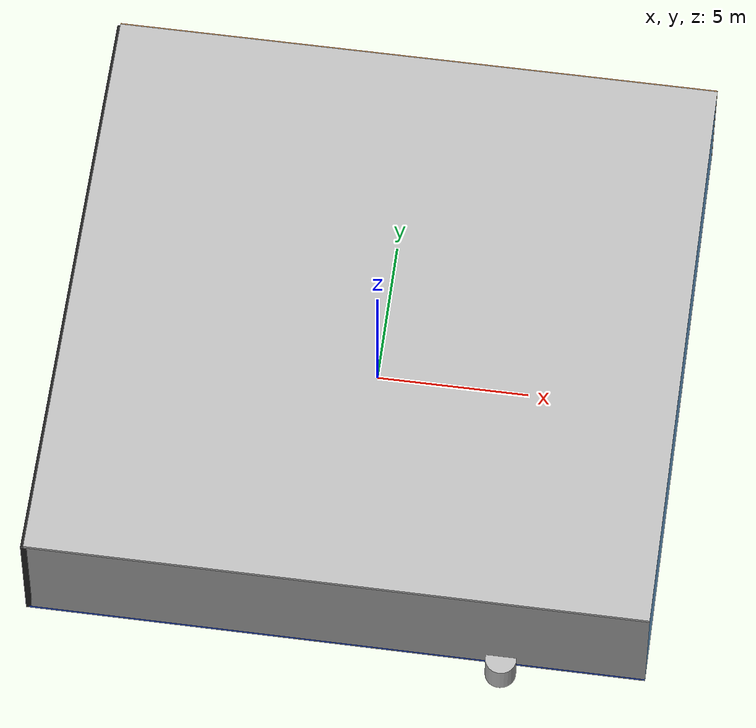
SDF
<sdf version="1.4">
 <world name="default">
  <physics type="ode">
   <max_step_size>0.001</max_step_size>
   <real_time_factor>1</real_time_factor>
   <real_time_update_rate>1000</real_time_update_rate>
   <gravity>0 0 -9.8</gravity>
  </physics>
  <scene><ambient>0.4 0.4 0.4 1</ambient><background>0.7 0.7 0.7 1</background><shadows>1</shadows></scene>
  <model name="Surrounding">
   <static>1</static>
   <link name="Ceiling">
    <collision name="Ceiling_Collision"><geometry><box><size>20 20 0.1</size></box></geometry></collision>
    <visual name="Ceiling_Visual">
     <geometry><box><size>20 20 0.1</size></box></geometry>
     <material>
      <script><uri>file://media/materials/scripts/gazebo.material</uri><name>Gazebo/JointAnchor</name></script>
     </material>
    </visual>
    <pose>0 0 4.05 0 0 0</pose>
   </link>
   <link name="Wall_South">
    <collision name="Wall_South_Collision">
     <geometry><box><size>20 0 4</size></box></geometry>
     <pose>0 0 2 0 -0 0</pose>
    </collision>
    <visual name="Wall_South_Visual">
     <pose>0 0 2 0 -0 0</pose>
     <geometry><box><size>20 0 4</size></box></geometry>
     <material>
      <script><uri>file://media/materials/scripts/gazebo.material</uri><name>Gazebo/GreyGradientSky</name></script>
     </material>
    </visual>
    <velocity_decay><linear>0</linear><angular>0</angular></velocity_decay>
    <pose>0 -10 0 0 -0 0</pose>
   </link>
   <link name="Wall_East">
    <collision name="Wall_21_Collision">
     <geometry><box><size>20 0 4</size></box></geometry>
     <pose>0 0 2 0 -0 0</pose>
    </collision>
    <visual name="Wall_21_Visual">
     <pose>0 0 2 0 -0 0</pose>
     <geometry><box><size>20 0 4</size></box></geometry>
     <material>
      <script><uri>file://media/materials/scripts/gazebo.material</uri><name>Gazebo/SkyBlue</name></script>
     </material>
    </visual>
    <velocity_decay><linear>0</linear><angular>0</angular></velocity_decay>
    <pose>10 0 0 0 -0 1.5708</pose>
   </link>
   <link name="Wall_North">
    <collision name="Wall_22_Collision">
     <geometry><box><size>20 0.2 4</size></box></geometry>
     <pose>0 0 2 0 -0 0</pose>
    </collision>
    <visual name="Wall_22_Visual">
     <pose>0 0 2 0 -0 0</pose>
     <geometry><box><size>20 0.2 4</size></box></geometry>
     <material>
      <script><uri>file://media/materials/scripts/gazebo.material</uri><name>Gazebo/WoodPallet</name></script>
     </material>
    </visual>
    <velocity_decay><linear>0</linear><angular>0</angular></velocity_decay>
    <pose>0 10 0 0 -0 0</pose>
   </link>
   <link name="Wall_West">
    <collision name="Wall_23_Collision">
     <geometry><box><size>20 0.2 4</size></box></geometry>
     <pose>0 0 2 0 -0 0</pose>
    </collision>
    <visual name="Wall_23_Visual">
     <pose>0 0 2 0 -0 0</pose>
     <geometry><box><size>20 0.2 4</size></box></geometry>
     <material>
      <script><uri>file://media/materials/scripts/gazebo.material</uri><name>Gazebo/Black</name></script>
     </material>
    </visual>
    <velocity_decay><linear>0</linear><angular>0</angular></velocity_decay>
    <pose>-10 0 0 0 0 -1.5708</pose>
   </link>
   <link name="Ground_link">
    <collision name="collision">
     <pose>0 0 .05 0 -0 0</pose>
     <geometry><box><size>20 20 0.1</size></box></geometry>
    </collision>
    <visual name="visual">
     <pose>0 0 .05 0 -0 0</pose>
     <geometry><box><size>20 20 0.1</size></box></geometry>
     <material>
      <script><uri>file://media/materials/scripts/gazebo.material</uri><name>Gazebo/BlueGlow</name></script>
     </material>
    </visual>
   </link>
   <static>1</static>
  </model>
  <spherical_coordinates>
   <surface_model>EARTH_WGS84</surface_model>
   <latitude_deg>0</latitude_deg>
   <longitude_deg>0</longitude_deg>
   <elevation>0</elevation>
   <heading_deg>0</heading_deg>
  </spherical_coordinates>
  <light name="lightball_0" type="diffuse">
   <diffuse>0.8 0.8 0.8 1</diffuse>
   <specular>0.2 0.2 0.2 1</specular>
   <attenuation>
    <range>100</range>
    <constant>0.7</constant>
    <linear>0.01</linear>
    <quadratic>0.001</quadratic>
   </attenuation>
   <direction>-0.5 0.1 -0.9</direction>
   <pose>9.43490736052 7.73347497562 1.76192126547 0 0 0</pose>
  </light>
  <light name="lightball_1" type="diffuse">
   <diffuse>0.8 0.8 0.8 1</diffuse>
   <specular>0.2 0.2 0.2 1</specular>
   <attenuation>
    <range>100</range>
    <constant>0.7</constant>
    <linear>0.01</linear>
    <quadratic>0.001</quadratic>
   </attenuation>
   <direction>-0.5 0.1 -0.9</direction>
   <pose>-3.26660884613 5.40580973968 2.5968642909 0 0 0</pose>
  </light>
  <light name="lightball_2" type="diffuse">
   <diffuse>0.8 0.8 0.8 1</diffuse>
   <specular>0.2 0.2 0.2 1</specular>
   <attenuation>
    <range>100</range>
    <constant>0.7</constant>
    <linear>0.01</linear>
    <quadratic>0.001</quadratic>
   </attenuation>
   <direction>-0.5 0.1 -0.9</direction>
   <pose>2.80051458642 9.61214985146 3.28955542797 0 0 0</pose>
  </light>
  <light name="lightball_3" type="diffuse">
   <diffuse>0.8 0.8 0.8 1</diffuse>
   <specular>0.2 0.2 0.2 1</specular>
   <attenuation>
    <range>100</range>
    <constant>0.7</constant>
    <linear>0.01</linear>
    <quadratic>0.001</quadratic>
   </attenuation>
   <direction>-0.5 0.1 -0.9</direction>
   <pose>1.51953147406 3.64399466307 2.66907766272 0 0 0</pose>
  </light>
  <include>
   <uri>model://robocup_3Dsim_goal</uri>
   <pose>0.364294124333 -6.51550654508 0 0 0 2.25742606649</pose>
  </include>
  <include>
   <uri>model://textured_shapes</uri>
   <pose>5.6082120394 -8.63374187643 0 0 0 2.96769093672</pose>
  </include>
  <include>
   <uri>model://textured_shapes</uri>
   <pose>4.48180129136 7.77069563385 0 0 0 0.735188096783</pose>
  </include>
 </world>
</sdf>

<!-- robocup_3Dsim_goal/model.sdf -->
<sdf version="1.5">
  <model name="robocup_3d_goal">
    <static>true</static>
    <link name="left_post">
      <pose>0 1.05 0.45 0 0 0</pose>
      <collision name="collision">
        <geometry>
          <cylinder>
            <radius>0.05</radius>
            <length>0.9</length>
          </cylinder>
        </geometry>
      </collision>
      <visual name="visual">
        <geometry>
          <cylinder>
            <radius>0.05</radius>
            <length>0.9</length>
          </cylinder>
        </geometry>
        <material>
          <script>
            <uri>file://media/materials/scripts/gazebo.material</uri>
            <name>Gazebo/ZincYellow</name>
          </script>
        </material>
      </visual>
    </link>
    <link name="left_support_horiz_lower">
      <pose>0.30 1.05 0.01 0 0 0</pose>
      <collision name="collision">
        <geometry>
          <box>
            <size>0.50 0.02 0.02</size>
          </box>
        </geometry>
      </collision>
      <visual name="visual">
        <geometry>
          <box>
            <size>0.50 0.02 0.02</size>
          </box>
        </geometry>
        <material>
          <script>
            <uri>file://media/materials/scripts/gazebo.material</uri>
            <name>Gazebo/White</name>
          </script>
        </material>
      </visual>
    </link>
    <link name="left_support_horiz_upper">
      <pose>0.30 1.05 0.79 0 0 0</pose>
      <collision name="collision">
        <geometry>
          <box>
            <size>0.50 0.02 0.02</size>
          </box>
        </geometry>
      </collision>
      <visual name="visual">
        <geometry>
          <box>
            <size>0.50 0.02 0.02</size>
          </box>
        </geometry>
        <material>
          <script>
            <uri>file://media/materials/scripts/gazebo.material</uri>
            <name>Gazebo/White</name>
          </script>
        </material>
      </visual>
    </link>
    <link name="left_support_vertical">
      <pose>0.56 1.05 0.4 0 1.5708 0</pose>
      <collision name="collision">
        <geometry>
          <box>
            <size>0.80 0.02 0.02</size>
          </box>
        </geometry>
      </collision>
      <visual name="visual">
        <geometry>
          <box>
            <size>0.80 0.02 0.02</size>
          </box>
        </geometry>
        <material>
          <script>
            <uri>file://media/materials/scripts/gazebo.material</uri>
            <name>Gazebo/White</name>
          </script>
        </material>
      </visual>
    </link>
    <link name="right_support_horiz_lower">
      <pose>0.30 -1.05 0.01 0 0 0</pose>
      <collision name="collision">
        <geometry>
          <box>
            <size>0.50 0.02 0.02</size>
          </box>
        </geometry>
      </collision>
      <visual name="visual">
        <geometry>
          <box>
            <size>0.50 0.02 0.02</size>
          </box>
        </geometry>
        <material>
          <script>
            <uri>file://media/materials/scripts/gazebo.material</uri>
            <name>Gazebo/White</name>
          </script>
        </material>
      </visual>
    </link>
    <link name="right_support_horiz_upper">
      <pose>0.30 -1.05 0.79 0 0 0</pose>
      <collision name="collision">
        <geometry>
          <box>
            <size>0.50 0.02 0.02</size>
          </box>
        </geometry>
      </collision>
      <visual name="visual">
        <geometry>
          <box>
            <size>0.50 0.02 0.02</size>
          </box>
        </geometry>
        <material>
          <script>
            <uri>file://media/materials/scripts/gazebo.material</uri>
            <name>Gazebo/White</name>
          </script>
        </material>
      </visual>
    </link>
    <link name="right_support_vertical">
      <pose>0.56 -1.05 0.4 0 1.5708 0</pose>
      <collision name="collision">
        <geometry>
          <box>
            <size>0.80 0.02 0.02</size>
          </box>
        </geometry>
      </collision>
      <visual name="visual">
        <geometry>
          <box>
            <size>0.80 0.02 0.02</size>
          </box>
        </geometry>
        <material>
          <script>
            <uri>file://media/materials/scripts/gazebo.material</uri>
            <name>Gazebo/White</name>
          </script>
        </material>
      </visual>
    </link>
    <link name="center_support_horiz_lower">
      <pose>0.56 0 0.01 0 1.5708 0</pose>
      <collision name="collision">
        <geometry>
          <box>
            <size>0.02 2.08 0.02</size>
          </box>
        </geometry>
      </collision>
      <visual name="visual">
        <geometry>
          <box>
            <size>0.02 2.08 0.02</size>
          </box>
        </geometry>
        <material>
          <script>
            <uri>file://media/materials/scripts/gazebo.material</uri>
            <name>Gazebo/White</name>
          </script>
        </material>
      </visual>
    </link>
    <link name="center_support_horiz_upper">
      <pose>0.56 0 0.79 0 1.5708 0</pose>
      <collision name="collision">
        <geometry>
          <box>
            <size>0.02 2.08 0.02</size>
          </box>
        </geometry>
      </collision>
      <visual name="visual">
        <geometry>
          <box>
            <size>0.02 2.08 0.02</size>
          </box>
        </geometry>
        <material>
          <script>
            <uri>file://media/materials/scripts/gazebo.material</uri>
            <name>Gazebo/White</name>
          </script>
        </material>
      </visual>
    </link>
    <link name="right_post">
      <pose>0 -1.05 0.45 0 0 0</pose>
      <collision name="collision">
        <geometry>
          <cylinder>
            <radius>0.05</radius>
            <length>0.9</length>
          </cylinder>
        </geometry>
      </collision>
      <visual name="visual">
        <geometry>
          <cylinder>
            <radius>0.05</radius>
            <length>0.9</length>
          </cylinder>
        </geometry>
        <material>
          <script>
            <uri>file://media/materials/scripts/gazebo.material</uri>
            <name>Gazebo/ZincYellow</name>
          </script>
        </material>
      </visual>
    </link>
    <link name="crossbar">
      <pose>0 0 0.85 1.57 1.57 0</pose>
      <collision name="collision">
        <geometry>
          <cylinder>
            <radius>0.05</radius>
            <length>2.0</length>
          </cylinder>
        </geometry>
      </collision>
      <visual name="visual">
        <geometry>
          <cylinder>
            <radius>0.05</radius>
            <length>2.0</length>
          </cylinder>
        </geometry>
        <material>
          <script>
            <uri>file://media/materials/scripts/gazebo.material</uri>
            <name>Gazebo/ZincYellow</name>
          </script>
        </material>
      </visual>
    </link>
    <link name="center_net">
      <pose>0.56 0 0.40 0 0 0</pose>
      <collision name="collision">
        <geometry>
          <box>
            <size>0.01 2.1 0.80</size>
          </box>
        </geometry>
      </collision>
      <visual name="visual">
        <geometry>
          <box>
            <size>0.01 2.1 0.80</size>
          </box>
        </geometry>
        <material>
          <script>
            <uri>model://../model_source/models/robocup09_spl_field/materials/scripts/</uri>
            <uri>model://../model_source/models/robocup09_spl_field/materials/textures/</uri>
            <name>RoboCup/Net</name>
          </script>
        </material>
      </visual>
    </link>
    <link name="left_net">
      <pose>0.30 1.05 0.40 0 0 0</pose>
      <collision name="collision">
        <geometry>
          <box>
            <size>0.50 0.01 0.76</size>
          </box>
        </geometry>
      </collision>
      <visual name="visual">
        <geometry>
          <box>
            <size>0.50 0.01 0.76</size>
          </box>
        </geometry>
        <material>
          <script>
            <uri>model://../model_source/models/robocup09_spl_field/materials/scripts/</uri>
            <uri>model://../model_source/models/robocup09_spl_field/materials/textures/</uri>
            <name>RoboCup/Net</name>
          </script>
        </material>
      </visual>
    </link>
    <link name="right_net">
      <pose>0.30 -1.05 0.40 0 0 0</pose>
      <collision name="collision">
        <geometry>
          <box>
            <size>0.50 0.01 0.76</size>
          </box>
        </geometry>
      </collision>
      <visual name="visual">
        <geometry>
          <box>
            <size>0.50 0.01 0.76</size>
          </box>
        </geometry>
        <material>
          <script>
            <uri>model://../model_source/models/robocup09_spl_field/materials/scripts/</uri>
            <uri>model://../model_source/models/robocup09_spl_field/materials/textures/</uri>
            <name>RoboCup/Net</name>
          </script>
        </material>
      </visual>
    </link>
  </model>
</sdf>

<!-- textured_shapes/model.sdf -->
<sdf version="1.6">
  <model name="textured_shapes">
    <pose>0 0 0.5 0 0 0</pose>
    <link name="box">
      <pose>0 -1.5 0 0 0 0</pose>
      <collision name="collision">
        <geometry>
          <box>
            <size>1 1 1</size>
          </box>
        </geometry>
      </collision>
      <visual name="visual">
        <geometry>
          <box>
            <size>1 1 1</size>
          </box>
        </geometry>
        <material>
          <script>
            <uri>model://../model_source/models/textured_shapes/materials/scripts</uri>
            <uri>model://../model_source/models/textured_shapes/materials/textures</uri>
            <name>TexturedShape/Squares</name>
          </script>
        </material>
      </visual>
    </link>
    <link name="sphere">
      <collision name="collision">
        <geometry>
          <sphere>
            <radius>0.5</radius>
          </sphere>
        </geometry>
      </collision>
      <visual name="visual">
        <geometry>
          <sphere>
            <radius>0.5</radius>
          </sphere>
        </geometry>
        <material>
          <script>
            <uri>model://../model_source/models/textured_shapes/materials/scripts</uri>
            <uri>model://../model_source/models/textured_shapes/materials/textures</uri>
            <name>TexturedShape/Squares</name>
          </script>
        </material>
      </visual>
    </link>
    <link name="cylinder">
      <pose>0 1.5 0 0 0 0</pose>
      <collision name="collision">
        <geometry>
          <cylinder>
            <radius>0.5</radius>
            <length>1</length>
          </cylinder>
        </geometry>
      </collision>
      <visual name="visual">
        <geometry>
          <cylinder>
            <radius>0.5</radius>
            <length>1</length>
          </cylinder>
        </geometry>
        <material>
          <script>
            <uri>model://../model_source/models/textured_shapes/materials/scripts</uri>
            <uri>model://../model_source/models/textured_shapes/materials/textures</uri>
            <name>TexturedShape/Squares</name>
          </script>
        </material>
      </visual>
    </link>
  </model>
</sdf>
